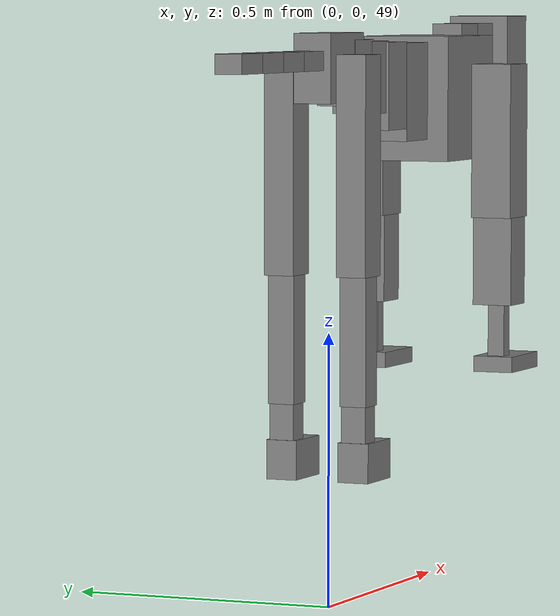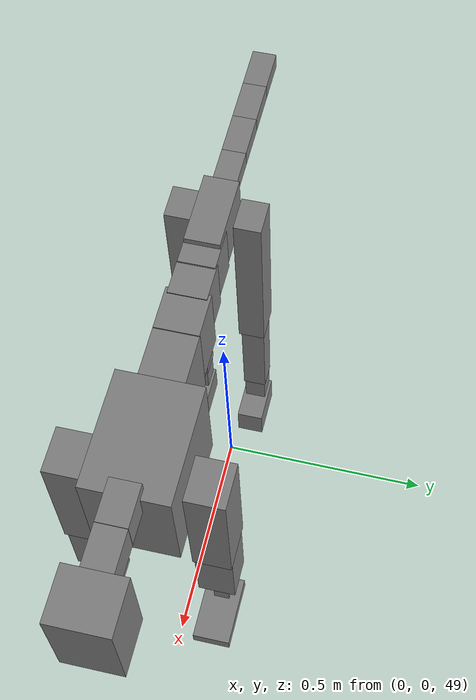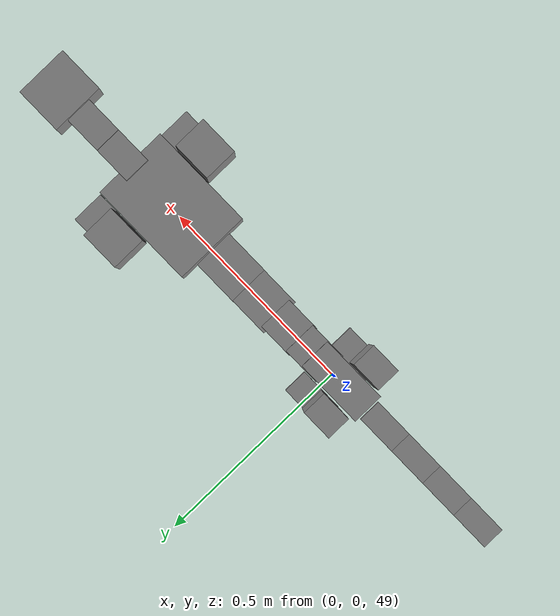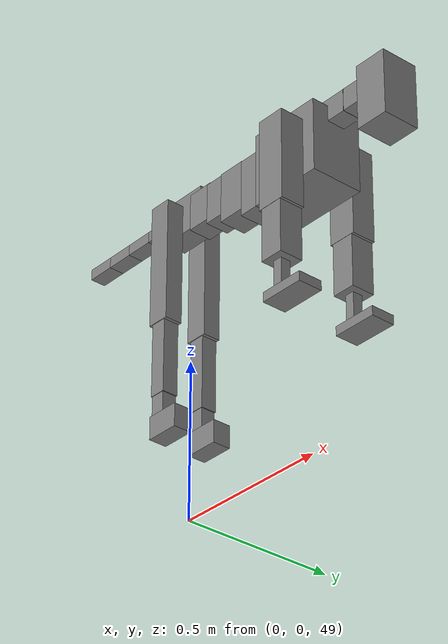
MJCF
<mujoco model="dog">

    <default>
        <joint armature="0.02" stiffness="1" damping="0.2" limited="true"/>
        <geom condim="3" friction="1 0.05 0.05" margin="0.01"/>
        <motor ctrllimited="true" ctrlrange="-1.0 1.0" forcelimited="true" gear="50"/>
    </default>

    <compiler inertiafromgeom="true" angle="radian"/>

    <option timestep="0.016" iterations="50" tolerance="1e-10" solver="Newton" jacobian="dense" cone="pyramidal"/>

    <size nconmax="20000" njmax="60000" nstack="5000000"/>
    <visual>
        <map force="0.1" zfar="30"/>
        <rgba haze="0.15 0.25 0.35 1"/>
        <quality shadowsize="2048"/>
        <global offwidth="800" offheight="800"/>
    </visual>

    <asset>
        <texture type="skybox" builtin="gradient" rgb1="0.3 0.5 0.7" rgb2="0 0 0" width="512" height="512"/>
        <texture name="texplane" type="2d" builtin="checker" rgb1=".2 .3 .4" rgb2=".1 0.15 0.2" width="512" height="512"
                 mark="cross" markrgb=".8 .8 .8"/>
        <texture name="texgeom" type="cube" builtin="flat" mark="cross" width="127" height="1278" rgb1="0.8 0.6 0.4"
                 rgb2="0.8 0.6 0.4" markrgb="1 1 1" random="0.01"/>

        <material name="matplane" reflectance="0.3" texture="texplane" texrepeat="1 1" texuniform="true"/>
        <material name="matgeom" texture="texgeom" texuniform="true" rgba="0.8 0.6 .4 1"/>
    </asset>

    <worldbody>
        <geom name="floor" pos="0 0 0" size="0 0 .25" type="plane" material="matplane" condim="3"/>

        <light directional="false" diffuse=".2 .2 .2" specular="0 0 0" pos="0 0 5" dir="0 0 -1" castshadow="false"/>
        <light mode="targetbodycom" target="torso" directional="false" diffuse=".8 .8 .8" specular="0.3 0.3 0.3"
               pos="0 0 4.0" dir="0 0 -1"/>

        <body name="root" pos="0 0 50">
            <freejoint name="root_1"/>
            <geom type="box" pos="0 0 -0.02" size="0.0774  0.0358  0.063" density="2030"/>

            <body name="spine1" pos="0.054 0 0">
                <joint name="spine1_y" axis="0 1 0" range="0 0.7" limited="true"/>
                <geom type="box" pos="0.02375 0 -0.03" size="0.04375  0.0375  0.05985" density="2030"/>

                <body name="spine2" pos="0.0612 0 0">
                    <joint name="spine2_y" axis="0 1 0" range="-0.15 0.15" limited="true"/>
                    <geom type="box" pos="0.03555  0  -0.04" size="0.04055  0.039  0.06615" density="2030"/>

                    <body name="spine3" pos="0.0730 0 0">
                        <joint name="spine3_y" axis="0 1 0" range="-0.15 0.15" limited="true"/>
                        <geom type="box" pos="0.03555  0  -0.057" size="0.04555  0.0445  0.081" density="2030"/>

                        <body name="spine4" pos="0.0780 0 0">
                            <joint name="spine4_y" axis="0 1 0" range="-0.15 0.15" limited="true"/>
                            <geom type="box" pos="0.05265  0  -0.07" size="0.05265  0.045  0.09135" density="2030"/>

                            <body name="torso" pos="0.1082 0 0">
                                <joint name="torso_y" axis="0 1 0" range="-0.15 0.15" limited="true"/>
                                <geom type="box" pos="0.11925  0  -0.085" size="0.11925  0.085  0.11745"
                                      density="2030"/>

                                <body name="neck1" pos="0.2160  0   0.0180">
                                    <joint name="neck1_y" axis="0 1 0" range="-1.2  -1" limited="true"/>
                                    <geom type="box" pos="0.0423  0  0" size="0.0423  0.03  0.036" density="2325"/>

                                    <body name="neck2" pos="0.0853  0  0">
                                        <joint name="neck2_y" axis="0 1 0" range="0.1  0" limited="true"/>
                                        <geom type="box" pos="0.0423  0  0" size="0.0423  0.03  0.036" density="2325"/>

                                        <body name="head" pos="0.0853  0  0">
                                            <joint name="head_y" axis="0 1 0" range="-0.3  -0.2" limited="true"/>
                                            <geom type="box" pos="0.0531  0  -0.055" size="0.0531  0.06  0.1044"
                                                  density="4030"/>

                                        </body>
                                    </body>
                                </body>

                                <body name="front_shoulder" pos="0.156  0   -0.0480">
                                    <joint name="front_shoulder_y" axis="0 1 0" range="-1 1.5" limited="true"/>
                                    <geom type="box" pos="0 0.13 -0.1192" size="0.0458  0.0392  0.1459" density="1158"/>
                                    <geom type="box" pos="0 -0.13 -0.1192" size="0.0458  0.0392  0.1459"
                                          density="1158"/>

                                    <body name="front_elbow" pos="0  0  -0.2385">
                                        <joint name="front_elbow_y" axis="0 1 0" range="-2 0" limited="true"/>
                                        <geom type="box" pos="0 0.13 -0.0966" size="0.0376  0.0384  0.0966"
                                              density="1081"/>
                                        <geom type="box" pos="0 -0.13 -0.0966" size="0.0376  0.0384  0.0966"
                                              density="1081"/>

                                        <body name="front_wrist" pos="0  0  -0.1932">
                                            <joint name="front_wrist_y" axis="0 1 0" range="-0.2 0" limited="true"/>
                                            <geom type="box" pos="0 0.13 -0.0569" size="0.0146  0.0162  0.0700"
                                                  density="1664"/>
                                            <geom type="box" pos="0 -0.13 -0.0569" size="0.0146  0.0162  0.0700"
                                                  density="1664"/>

                                            <body name="front_finger_end" pos="0  0  -0.1137">
                                                <joint name="front_finger_y" axis="0 1 0" range="-0.4 1"
                                                       limited="true"/>
                                                <geom type="box" pos="0.0388  0.13  0.0001"
                                                      size="0.0711  0.0388  0.0149" density="1515"/>
                                                <geom type="box" pos="0.0388  -0.13  0.0001"
                                                      size="0.0711  0.0388  0.0149" density="1515"/>

                                            </body>

                                        </body>
                                    </body>
                                </body>

                            </body>
                        </body>
                    </body>
                </body>
            </body>

            <body name="back_hip" pos="-0.03 0 -0.018">
                <joint name="back_hip_y" axis="0 1 0" range="-1.5 0.3" limited="true"/>
                <geom type="box" pos="0 0.07 -0.1761" size="0.0360  0.0282  0.1989" density="1154"/>
                <geom type="box" pos="0 -0.07 -0.1761" size="0.0360  0.0282  0.1989" density="1154"/>

                <body name="back_knee" pos="0  0  -0.3522">
                    <joint name="back_knee_y" axis="0 1 0" range="0 2.8" limited="true"/>
                    <geom type="box" pos="0 0.07 -0.1202" size="0.0256  0.0252  0.1357" density="1227"/>
                    <geom type="box" pos="0 -0.07 -0.1202" size="0.0256  0.0252  0.1357" density="1227"/>

                    <body name="back_ankle" pos="0  0  -0.2403">
                        <joint name="back_ankle_y" axis="0 1 0" range="-2.2 0" limited="true"/>
                        <geom type="box" pos="0 0.07 -0.0480" size="0.0232  0.0232  0.0593" density="1284"/>
                        <geom type="box" pos="0 -0.07 -0.0480" size="0.0232  0.0232  0.0593" density="1284"/>

                        <body name="back_toe_end" pos="0  0  -0.0960">
                            <joint name="back_toe_y" axis="0 1 0" range="-0.4 1" limited="true"/>
                            <geom type="box" pos="0.0292  0.07  -0.0209" size="0.0535  0.0292  0.0359" density="1515"/>
                            <geom type="box" pos="0.0292  -0.07  -0.0209" size="0.0535  0.0292  0.0359" density="1515"/>

                        </body>
                    </body>
                </body>
            </body>

            <body name="tail1" pos="-0.074 0 -0.006">
                <joint name="tail1_y" axis="0 1 0" range="-0.2 0.2" limited="true"/>
                <geom type="box" pos="-0.0536  0  0" size="0.045  0.025  0.0175" density="1587"/>

                <body name="tail2" pos="-0.09 0 0">
                    <joint name="tail2_y" axis="0 1 0" range="-0.2 0.2" limited="true"/>
                    <geom type="box" pos="-0.0536  0  0" size="0.045  0.025  0.0175" density="1587"/>

                    <body name="tail3" pos="-0.09 0 0">
                        <joint name="tail3_y" axis="0 1 0" range="-0.2 0.2" limited="true"/>
                        <geom type="box" pos="-0.0536  0  0" size="0.045  0.025  0.0175" density="1587"/>

                        <body name="tail4" pos="-0.09 0 0">
                            <joint name="tail4_y" axis="0 1 0" range="-0.2 0.2" limited="true"/>
                            <geom type="box" pos="-0.0536  0  0" size="0.045  0.025  0.0175" density="1587"/>

                        </body>
                    </body>
                </body>
            </body>
        </body>
    </worldbody>

    <actuator>
        <motor joint="spine1_y" forcerange="-150 150     "/>
        <motor joint="spine2_y" forcerange="-150 150     "/>
        <motor joint="spine3_y" forcerange="-150 150     "/>
        <motor joint="spine4_y" forcerange="-150 150     "/>
        <motor joint="torso_y" forcerange="-150 150     "/>
        <motor joint="neck1_y" forcerange="-100 100       "/>
        <motor joint="neck2_y" forcerange="-100 100       "/>
        <motor joint="head_y" forcerange="-150 150       "/>
        <motor joint="front_shoulder_y" forcerange="-187.91 173.14"/>
        <motor joint="front_elbow_y" forcerange="-185.26 194.01"/>
        <motor joint="front_wrist_y" forcerange="-75.68 54.13"/>
        <motor joint="front_finger_y" forcerange="-72.26 94.47"/>
        <motor joint="back_hip_y" forcerange="-328.44 248.23"/>
        <motor joint="back_knee_y" forcerange="-276.36 290.88"/>
        <motor joint="back_angle_y" forcerange="-140.71 130.88"/>
        <motor joint="back_toe_y" forcerange="-78.29 75.25"/>
        <motor joint="tail1_y" forcerange="-50 50     "/>
        <motor joint="tail2_y" forcerange="-50 50     "/>
        <motor joint="tail3_y" forcerange="-50 50     "/>
        <motor joint="tail4_y" forcerange="-50 50     "/>
    </actuator>
</mujoco>
